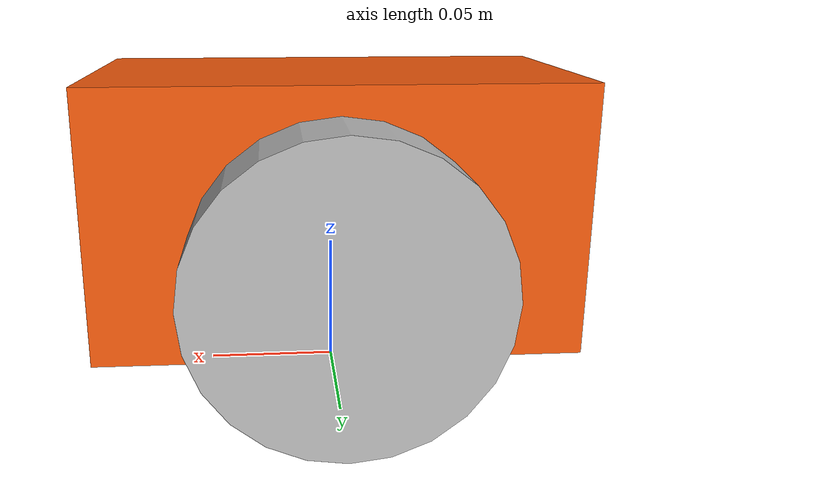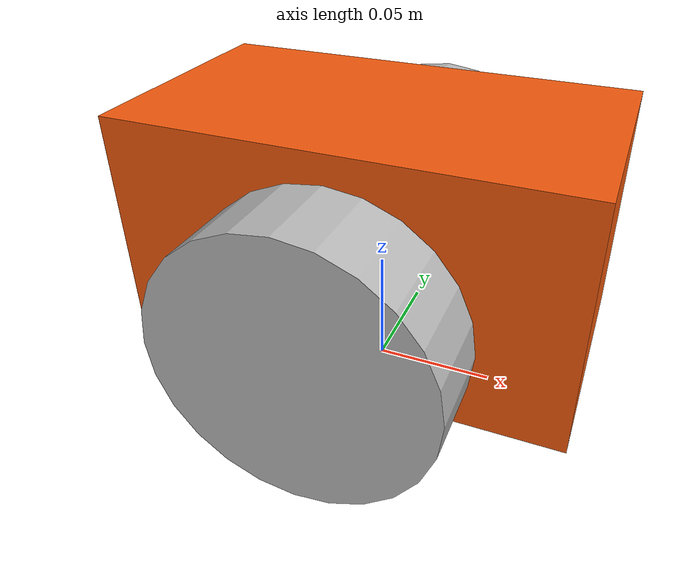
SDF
<?xml version="1.0"?>
<sdf version="1.10">
  <model name="drive_pod">
    <self_collide>true</self_collide>
    <link name="base_link">
      <inertial><mass>2.1</mass><inertia><ixx>0.006</ixx><iyy>0.008</iyy><izz>0.009</izz></inertia></inertial>
      <visual name="body_visual"><pose>0 0 0.07 0 0 0</pose><geometry><box><size>0.18 0.10 0.10</size></box></geometry><material><diffuse>0.95 0.35 0.05 1</diffuse></material></visual>
      <collision name="body_collision"><pose>0 0 0.07 0 0 0</pose><geometry><box><size>0.18 0.10 0.10</size></box></geometry></collision>
    </link>
    <link name="left_wheel"><pose relative_to="base_link">0 0.07 0.055 0 0 0</pose><inertial><mass>0.3</mass><inertia><ixx>0.0007</ixx><iyy>0.0012</iyy><izz>0.0007</izz></inertia></inertial><visual name="visual"><pose>0 0 0 1.5708 0 0</pose><geometry><cylinder><radius>0.055</radius><length>0.035</length></cylinder></geometry></visual><collision name="collision"><pose>0 0 0 1.5708 0 0</pose><geometry><cylinder><radius>0.055</radius><length>0.035</length></cylinder></geometry><surface><friction><ode><mu>1.2</mu><mu2>0.35</mu2></ode></friction></surface></collision></link>
    <link name="right_wheel"><pose relative_to="base_link">0 -0.07 0.055 0 0 0</pose><inertial><mass>0.3</mass><inertia><ixx>0.0007</ixx><iyy>0.0012</iyy><izz>0.0007</izz></inertia></inertial><visual name="visual"><pose>0 0 0 1.5708 0 0</pose><geometry><cylinder><radius>0.055</radius><length>0.035</length></cylinder></geometry></visual><collision name="collision"><pose>0 0 0 1.5708 0 0</pose><geometry><cylinder><radius>0.055</radius><length>0.035</length></cylinder></geometry><surface><friction><ode><mu>1.2</mu><mu2>0.35</mu2></ode></friction></surface></collision></link>
    <joint name="left_wheel_joint" type="revolute"><parent>base_link</parent><child>left_wheel</child><axis><xyz>0 1 0</xyz><limit><effort>14</effort><velocity>24</velocity></limit><dynamics><damping>0.05</damping><friction>0.01</friction></dynamics></axis></joint>
    <joint name="right_wheel_joint" type="revolute"><parent>base_link</parent><child>right_wheel</child><axis><xyz>0 1 0</xyz><limit><effort>14</effort><velocity>24</velocity></limit><dynamics><damping>0.05</damping><friction>0.01</friction></dynamics></axis></joint>
    <plugin filename="gz-sim-diff-drive-system" name="gz::sim::systems::DiffDrive">
      <left_joint>left_wheel_joint</left_joint><right_joint>right_wheel_joint</right_joint>
      <wheel_separation>0.14</wheel_separation><wheel_radius>0.055</wheel_radius>
      <frame_id>odom</frame_id><child_frame_id>base_link</child_frame_id>
      <max_linear_velocity>0.8</max_linear_velocity><max_angular_velocity>2.0</max_angular_velocity>
      <max_linear_acceleration>0.8</max_linear_acceleration><max_angular_acceleration>1.5</max_angular_acceleration>
    </plugin>
  </model>
</sdf>
